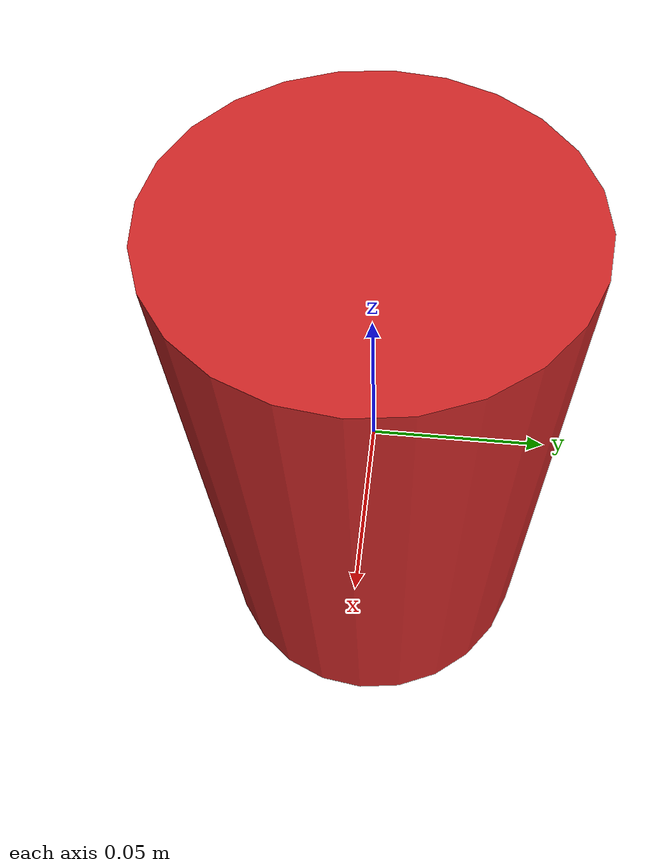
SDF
<?xml version="1.0" ?>
<sdf version="1.5">
  <model name="Plastic_Cylinder">
   <link name='link_2'>
      <inertial>
        <mass>1</mass>
        <inertia>
          <ixx>0.145833</ixx>
          <ixy>0</ixy>
          <ixz>0</ixz>
          <iyy>0.145833</iyy>
          <iyz>0</iyz>
          <izz>0.125</izz>
        </inertia>
        <pose>0 0 0 0 -0 0</pose>
      </inertial>

      <collision name="collision">
        <geometry>
          <cylinder>
            <radius>0.052</radius>
            <length>0.17</length>
          </cylinder>
        </geometry>
        <surface>
          <contact>
            <!-- Red Pine coefficients for longitudinal axis of the wood
                 according to:
                 http://www.fpl.fs.fed.us/documnts/fplgtr/fplgtr113/ch04.pdf -->
            <poissons_ratio>0.347</poissons_ratio>
            <elastic_modulus>8.8e+09</elastic_modulus>
            <ode>
              <kp>100000</kp>
              <kd>1</kd>
              <max_vel>1.0</max_vel>
              <min_depth>0.001</min_depth>
            </ode>
          </contact>
          <friction>
            <torsional>
              <coefficient>1.0</coefficient>
              <use_patch_radius>0</use_patch_radius>
              <surface_radius>0.05</surface_radius>
            </torsional>
          </friction>
        </surface>
      </collision>

      <visual name="visual">
        <geometry>
          <cylinder>
            <radius>0.052</radius>
            <length>0.17</length>
          </cylinder>
        </geometry>
        <material>
          <script>
            <uri>file://media/materials/scripts/gazebo.material</uri>
            <name>Gazebo/Red</name>
          </script>
        </material>
      </visual>

    </link>
  </model>
</sdf>
